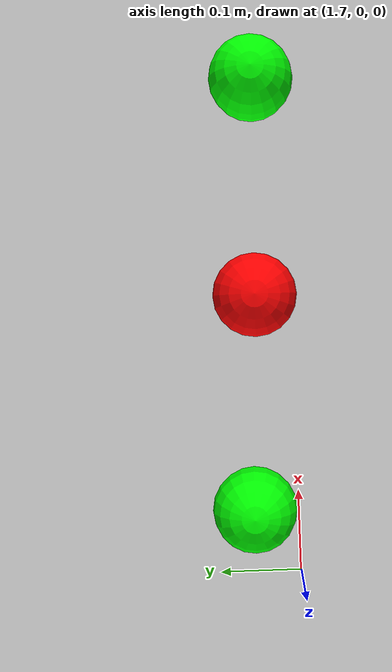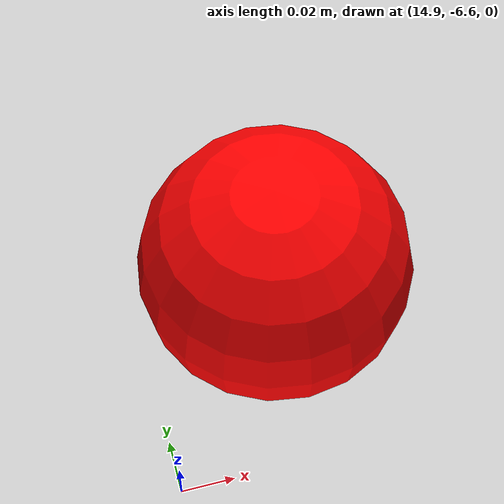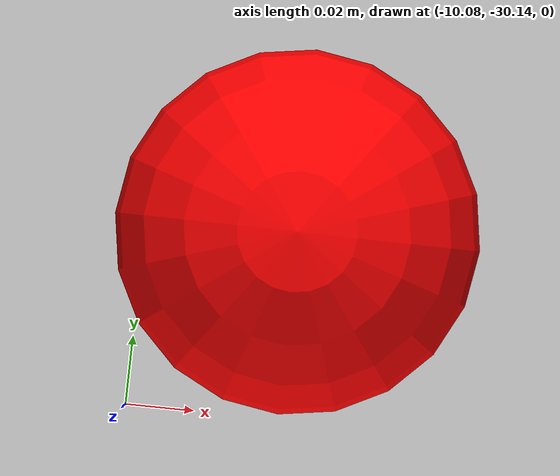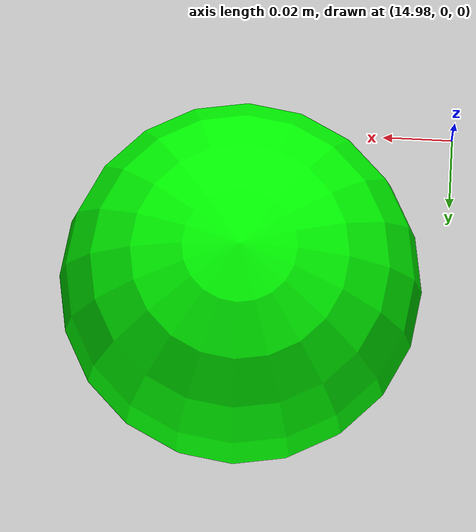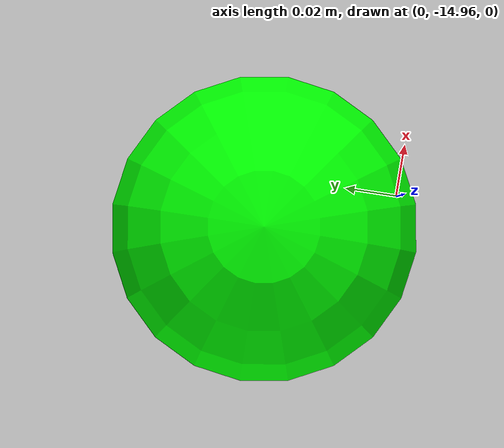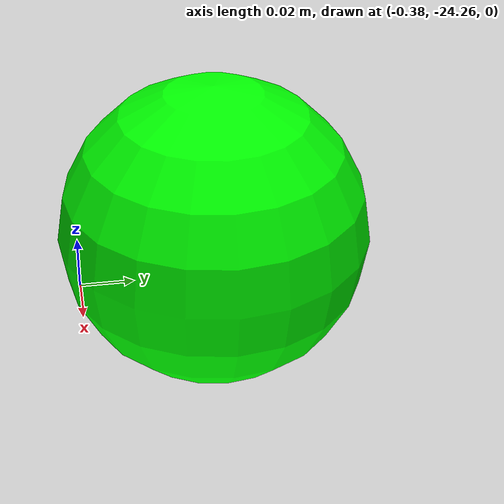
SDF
<sdf version="1.6">
 <world name="default">
  <model name="ground_plane">
   <static>1</static>
   <link name="link">
    <collision name="collision">
     <geometry><plane><normal>0 0 1</normal><size>100 100</size></plane></geometry>
     <surface><friction><ode><mu>100</mu><mu2>50</mu2></ode></friction></surface>
    </collision>
    <visual name="visual">
     <cast_shadows>0</cast_shadows>
     <geometry><plane><normal>0 0 1</normal><size>100 100</size></plane></geometry>
     <material>
      <script><uri>file://media/materials/scripts/gazebo.material</uri><name>Gazebo/Grey</name></script>
     </material>
    </visual>
   </link>
  </model>
  <light name="sun" type="directional">
   <pose>0 0 10 0 -0 0</pose>
   <diffuse>0.8 0.8 0.8 1</diffuse>
   <specular>0.1 0.1 0.1 1</specular>
   <attenuation>
    <range>1000</range>
    <constant>0.9</constant>
    <linear>0.01</linear>
    <quadratic>0.001</quadratic>
   </attenuation>
   <direction>-0.5 0.5 -1</direction>
  </light>
  <gravity>0 0 -9.8</gravity>
  <magnetic_field>6e-06 2.3e-05 -4.2e-05</magnetic_field>
  <atmosphere type="adiabatic"/>
  <physics name="default_physics" default="0" type="ode">
   <max_step_size>0.001</max_step_size>
   <real_time_factor>1</real_time_factor>
   <real_time_update_rate>1000</real_time_update_rate>
  </physics>
  <scene><ambient>0.4 0.4 0.4 1</ambient><background>0.7 0.7 0.7 1</background><shadows>1</shadows></scene>
  <spherical_coordinates>
   <surface_model>EARTH_WGS84</surface_model>
   <latitude_deg>0</latitude_deg>
   <longitude_deg>0</longitude_deg>
   <elevation>0</elevation>
   <heading_deg>0</heading_deg>
  </spherical_coordinates>
  <model name="sphere_red_1">
   <pose>-10.0355 -30.0847 0.05 0 -0 0</pose>
   <link name="link1">
    <inertial>
     <mass>0.25</mass>
     <inertia><ixx>0.00169</ixx><iyy>0.00169</iyy><izz>0.00169</izz><ixy>0</ixy><ixz>0</ixz><iyz>0</iyz></inertia>
    </inertial>
    <collision name="body_collision1">
     <geometry><sphere><radius>0.05</radius></sphere></geometry>
     <surface>
      <bounce><restitution_coefficient>0.6</restitution_coefficient><threshold>0</threshold></bounce>
      <contact><ode><max_vel>10</max_vel></ode></contact>
     </surface>
    </collision>
    <visual name="v1">
     <material>
      <ambient>1 0 0 1</ambient>
      <diffuse>1 0 0 1</diffuse>
      <specular>1 0 0 1</specular>
      <emissive>1 0 0 1</emissive>
     </material>
     <geometry><sphere><radius>0.05</radius></sphere></geometry>
    </visual>
   </link>
  </model>
  <model name="sphere_red_2">
   <pose>2.04533 0.046773 0.05 0 -0 0</pose>
   <link name="link2">
    <inertial>
     <mass>0.25</mass>
     <inertia><ixx>0.00169</ixx><iyy>0.00169</iyy><izz>0.00169</izz><ixy>0</ixy><ixz>0</ixz><iyz>0</iyz></inertia>
    </inertial>
    <collision name="body_collision2">
     <geometry><sphere><radius>0.05</radius></sphere></geometry>
     <surface>
      <bounce><restitution_coefficient>0.6</restitution_coefficient><threshold>0</threshold></bounce>
      <contact><ode><max_vel>10</max_vel></ode></contact>
     </surface>
    </collision>
    <visual name="v2">
     <material>
      <ambient>1 0 0 1</ambient>
      <diffuse>1 0 0 1</diffuse>
      <specular>1 0 0 1</specular>
      <emissive>1 0 0 1</emissive>
     </material>
     <geometry><sphere><radius>0.05</radius></sphere></geometry>
    </visual>
   </link>
  </model>
  <model name="sphere_red_3">
   <pose>-9.62359 -9.46561 0.05 0 -0 0</pose>
   <link name="link1">
    <inertial>
     <mass>0.25</mass>
     <inertia><ixx>0.00169</ixx><iyy>0.00169</iyy><izz>0.00169</izz><ixy>0</ixy><ixz>0</ixz><iyz>0</iyz></inertia>
    </inertial>
    <collision name="body_collision3">
     <geometry><sphere><radius>0.05</radius></sphere></geometry>
     <surface>
      <bounce><restitution_coefficient>0.6</restitution_coefficient><threshold>0</threshold></bounce>
      <contact><ode><max_vel>10</max_vel></ode></contact>
     </surface>
    </collision>
    <visual name="v3">
     <material>
      <ambient>1 0 0 1</ambient>
      <diffuse>1 0 0 1</diffuse>
      <specular>1 0 0 1</specular>
      <emissive>1 0 0 1</emissive>
     </material>
     <geometry><sphere><radius>0.05</radius></sphere></geometry>
    </visual>
   </link>
  </model>
  <model name="sphere_red_4">
   <pose>15.0272 -15.0701 0.05 0 -0 0</pose>
   <link name="link4">
    <inertial>
     <mass>0.25</mass>
     <inertia><ixx>0.00169</ixx><iyy>0.00169</iyy><izz>0.00169</izz><ixy>0</ixy><ixz>0</ixz><iyz>0</iyz></inertia>
    </inertial>
    <collision name="body_collision4">
     <geometry><sphere><radius>0.05</radius></sphere></geometry>
     <surface>
      <bounce><restitution_coefficient>0.6</restitution_coefficient><threshold>0</threshold></bounce>
      <contact><ode><max_vel>10</max_vel></ode></contact>
     </surface>
    </collision>
    <visual name="v4">
     <material>
      <ambient>1 0 0 1</ambient>
      <diffuse>1 0 0 1</diffuse>
      <specular>1 0 0 1</specular>
      <emissive>1 0 0 1</emissive>
     </material>
     <geometry><sphere><radius>0.05</radius></sphere></geometry>
    </visual>
   </link>
  </model>
  <model name="sphere_red_5">
   <pose>14.9506 -6.54291 0.05 0 -0 0</pose>
   <link name="link1">
    <inertial>
     <mass>0.25</mass>
     <inertia><ixx>0.00169</ixx><iyy>0.00169</iyy><izz>0.00169</izz><ixy>0</ixy><ixz>0</ixz><iyz>0</iyz></inertia>
    </inertial>
    <collision name="body_collision5">
     <geometry><sphere><radius>0.05</radius></sphere></geometry>
     <surface>
      <bounce><restitution_coefficient>0.6</restitution_coefficient><threshold>0</threshold></bounce>
      <contact><ode><max_vel>10</max_vel></ode></contact>
     </surface>
    </collision>
    <visual name="v5">
     <material>
      <ambient>1 0 0 1</ambient>
      <diffuse>1 0 0 1</diffuse>
      <specular>1 0 0 1</specular>
      <emissive>1 0 0 1</emissive>
     </material>
     <geometry><sphere><radius>0.05</radius></sphere></geometry>
    </visual>
   </link>
  </model>
  <model name="sphere_red_6">
   <pose>1.03097 0.050281 0.05 0 -0 0</pose>
   <link name="link6">
    <inertial>
     <mass>0.25</mass>
     <inertia><ixx>0.00169</ixx><iyy>0.00169</iyy><izz>0.00169</izz><ixy>0</ixy><ixz>0</ixz><iyz>0</iyz></inertia>
    </inertial>
    <collision name="body_collision6">
     <geometry><sphere><radius>0.05</radius></sphere></geometry>
     <surface>
      <bounce><restitution_coefficient>0.6</restitution_coefficient><threshold>0</threshold></bounce>
      <contact><ode><max_vel>10</max_vel></ode></contact>
     </surface>
    </collision>
    <visual name="v6">
     <material>
      <ambient>1 0 0 1</ambient>
      <diffuse>1 0 0 1</diffuse>
      <specular>1 0 0 1</specular>
      <emissive>1 0 0 1</emissive>
     </material>
     <geometry><sphere><radius>0.05</radius></sphere></geometry>
    </visual>
   </link>
  </model>
  <model name="sphere_green_1">
   <pose>-0.334116 -24.2166 0.05 0 -0 0</pose>
   <link name="link1">
    <inertial>
     <mass>0.25</mass>
     <inertia><ixx>0.00169</ixx><iyy>0.00169</iyy><izz>0.00169</izz><ixy>0</ixy><ixz>0</ixz><iyz>0</iyz></inertia>
    </inertial>
    <collision name="body_collision1">
     <geometry><sphere><radius>0.05</radius></sphere></geometry>
     <surface>
      <bounce><restitution_coefficient>0.6</restitution_coefficient><threshold>0</threshold></bounce>
      <contact><ode><max_vel>10</max_vel></ode></contact>
     </surface>
    </collision>
    <visual name="v1">
     <material>
      <ambient>0 1 0 1</ambient>
      <diffuse>0 1 0 1</diffuse>
      <specular>0 1 0 1</specular>
      <emissive>0 1 0 1</emissive>
     </material>
     <geometry><sphere><radius>0.05</radius></sphere></geometry>
    </visual>
   </link>
  </model>
  <model name="sphere_green_2">
   <pose>15.0384 0.056494 0.05 0 -0 0</pose>
   <link name="link2">
    <inertial>
     <mass>0.25</mass>
     <inertia><ixx>0.00169</ixx><iyy>0.00169</iyy><izz>0.00169</izz><ixy>0</ixy><ixz>0</ixz><iyz>0</iyz></inertia>
    </inertial>
    <collision name="body_collision2">
     <geometry><sphere><radius>0.05</radius></sphere></geometry>
     <surface>
      <bounce><restitution_coefficient>0.6</restitution_coefficient><threshold>0</threshold></bounce>
      <contact><ode><max_vel>10</max_vel></ode></contact>
     </surface>
    </collision>
    <visual name="v2">
     <material>
      <ambient>0 1 0 1</ambient>
      <diffuse>0 1 0 1</diffuse>
      <specular>0 1 0 1</specular>
      <emissive>0 1 0 1</emissive>
     </material>
     <geometry><sphere><radius>0.05</radius></sphere></geometry>
    </visual>
   </link>
  </model>
  <model name="sphere_green_3">
   <pose>-0.021137 -14.9115 0.05 0 -0 0</pose>
   <link name="link3">
    <inertial>
     <mass>0.25</mass>
     <inertia><ixx>0.00169</ixx><iyy>0.00169</iyy><izz>0.00169</izz><ixy>0</ixy><ixz>0</ixz><iyz>0</iyz></inertia>
    </inertial>
    <collision name="body_collision3">
     <geometry><sphere><radius>0.05</radius></sphere></geometry>
     <surface>
      <bounce><restitution_coefficient>0.6</restitution_coefficient><threshold>0</threshold></bounce>
      <contact><ode><max_vel>10</max_vel></ode></contact>
     </surface>
    </collision>
    <visual name="v3">
     <material>
      <ambient>0 1 0 1</ambient>
      <diffuse>0 1 0 1</diffuse>
      <specular>0 1 0 1</specular>
      <emissive>0 1 0 1</emissive>
     </material>
     <geometry><sphere><radius>0.05</radius></sphere></geometry>
    </visual>
   </link>
  </model>
  <model name="sphere_green_4">
   <pose>2.30166 0.04311 0.05 0 -0 0</pose>
   <link name="link4">
    <inertial>
     <mass>0.25</mass>
     <inertia><ixx>0.00169</ixx><iyy>0.00169</iyy><izz>0.00169</izz><ixy>0</ixy><ixz>0</ixz><iyz>0</iyz></inertia>
    </inertial>
    <collision name="body_collision4">
     <geometry><sphere><radius>0.05</radius></sphere></geometry>
     <surface>
      <bounce><restitution_coefficient>0.6</restitution_coefficient><threshold>0</threshold></bounce>
      <contact><ode><max_vel>10</max_vel></ode></contact>
     </surface>
    </collision>
    <visual name="v4">
     <material>
      <ambient>0 1 0 1</ambient>
      <diffuse>0 1 0 1</diffuse>
      <specular>0 1 0 1</specular>
      <emissive>0 1 0 1</emissive>
     </material>
     <geometry><sphere><radius>0.05</radius></sphere></geometry>
    </visual>
   </link>
  </model>
  <model name="sphere_green_5">
   <pose>-20.1574 -4.90096 0.05 0 -0 0</pose>
   <link name="link5">
    <inertial>
     <mass>0.25</mass>
     <inertia><ixx>0.00169</ixx><iyy>0.00169</iyy><izz>0.00169</izz><ixy>0</ixy><ixz>0</ixz><iyz>0</iyz></inertia>
    </inertial>
    <collision name="body_collision5">
     <geometry><sphere><radius>0.05</radius></sphere></geometry>
     <surface>
      <bounce><restitution_coefficient>0.6</restitution_coefficient><threshold>0</threshold></bounce>
      <contact><ode><max_vel>10</max_vel></ode></contact>
     </surface>
    </collision>
    <visual name="v5">
     <material>
      <ambient>0 1 0 1</ambient>
      <diffuse>0 1 0 1</diffuse>
      <specular>0 1 0 1</specular>
      <emissive>0 1 0 1</emissive>
     </material>
     <geometry><sphere><radius>0.05</radius></sphere></geometry>
    </visual>
   </link>
  </model>
  <model name="sphere_green_6">
   <pose>1.79127 0.054466 0.05 0 -0 0</pose>
   <link name="link6">
    <inertial>
     <mass>0.25</mass>
     <inertia><ixx>0.00169</ixx><iyy>0.00169</iyy><izz>0.00169</izz><ixy>0</ixy><ixz>0</ixz><iyz>0</iyz></inertia>
    </inertial>
    <collision name="body_collision6">
     <geometry><sphere><radius>0.05</radius></sphere></geometry>
     <surface>
      <bounce><restitution_coefficient>0.6</restitution_coefficient><threshold>0</threshold></bounce>
      <contact><ode><max_vel>10</max_vel></ode></contact>
     </surface>
    </collision>
    <visual name="v6">
     <material>
      <ambient>0 1 0 1</ambient>
      <diffuse>0 1 0 1</diffuse>
      <specular>0 1 0 1</specular>
      <emissive>0 1 0 1</emissive>
     </material>
     <geometry><sphere><radius>0.05</radius></sphere></geometry>
    </visual>
   </link>
  </model>
 </world>
</sdf>
